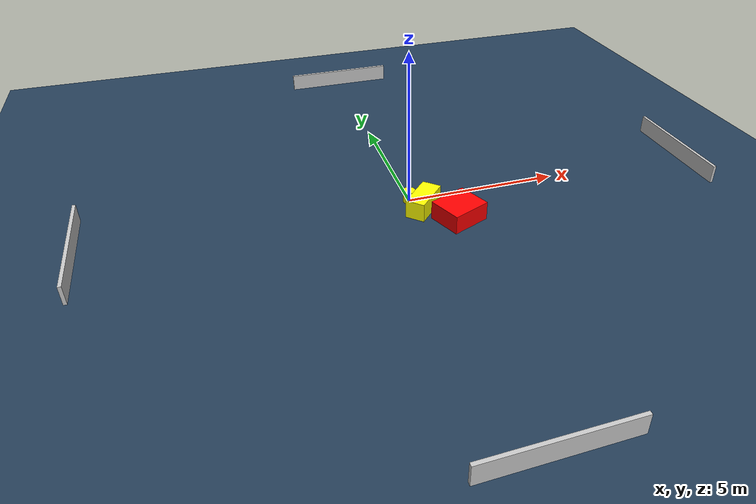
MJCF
<?xml version="1.0" ?>
<mujoco model="generated_environment">
  <option timestep="0.01" integrator="RK4" cone="elliptic"/>
  <default>
    <geom density="1"/>
  </default>
  <asset>
    <texture builtin="gradient" height="3072" name="skybox" rgb1="0.3 0.5 0.7" rgb2="0 0 0" type="skybox" width="512"/>
    <texture builtin="checker" height="300" name="groundplane" rgb1="0.2 0.3 0.4" rgb2="0.1 0.2 0.3" type="2d" width="300"/>
    <material name="groundplane" reflectance="0.2" texrepeat="5 5" texture="groundplane"/>
  </asset>
  <worldbody>
    <light dir="0 0 -1" directional="true" pos="0 0 1.5"/>
    <geom condim="3" friction="0.5 0.005 0.001" material="groundplane" name="floor" pos="0 0 0" size="0 0 0.05" type="plane"/>
    <body name="walls">
      <geom name="wall_1" condim="4" pos="-10.0 0.0 0.3" rgba="0.800000011920929 0.800000011920929 0.800000011920929 1.0" size="0.05 2.0 0.3" type="box"/>
      <geom name="wall_2" condim="4" pos="10.0 0.0 0.3" rgba="0.800000011920929 0.800000011920929 0.800000011920929 1.0" size="0.05 2.0 0.3" type="box"/>
      <geom name="wall_3" condim="4" pos="0.0 -10.0 0.3" rgba="0.800000011920929 0.800000011920929 0.800000011920929 1.0" size="2.0 0.05 0.3" type="box"/>
      <geom name="wall_4" condim="4" pos="0.0 10.0 0.3" rgba="0.800000011920929 0.800000011920929 0.800000011920929 1.0" size="2.0 0.05 0.3" type="box"/>
    </body>
    <body name="robot">
      <joint name="joint_x" type="slide" pos="0 0 0" axis="1 0 0"/>
      <joint name="joint_y" type="slide" pos="0 0 0" axis="0 1 0"/>
      <geom name="robot" type="cylinder" pos="0.0 0.0 0.2" size="0.2 0.2 0.0" mass="5.0" friction="1.0 0.005 0.0001" condim="4" rgba="1.0 1.0 0.0 1.0"/>
    </body>
    <body name="obstacle_1_movable">
      <geom name="obstacle_1_movable" condim="4" pos="0.27830905784279364 -0.5994225461855908 0.3" euler="0 0 316.32569069356305" friction="0.0 0.005 0.001" rgba="1.0 1.0 0.0 1.0" size="0.3087685037363058 0.6304204899495007 0.3" type="box" mass="0.1"/>
      <joint type="free"/>
    </body>
    <body name="obstacle_2_static">
      <geom name="obstacle_2_static" condim="4" pos="1.156862624120515 -1.4170638857976778 0.3" euler="0 0 112.20544033597703" friction="0.0 0.005 0.001" rgba="1.0 0.0 0.0 1.0" size="0.557636745932082 0.6386475530097966 0.3" type="box"/>
    </body>
  </worldbody>
  <actuator>
    <motor name="actuator_x" joint="joint_x" gear="1" ctrlrange="-1 1"/>
    <motor name="actuator_y" joint="joint_y" gear="1" ctrlrange="-1 1"/>
  </actuator>
</mujoco>
